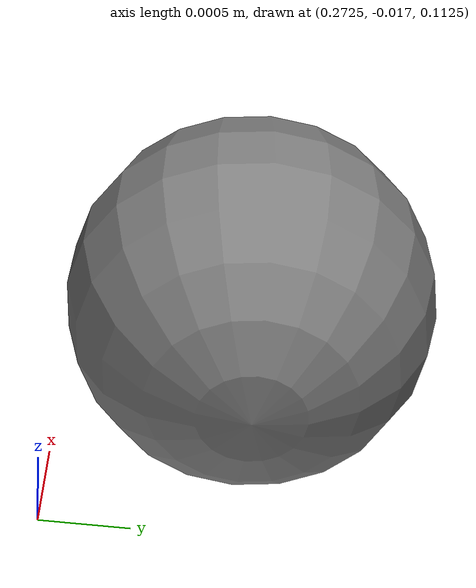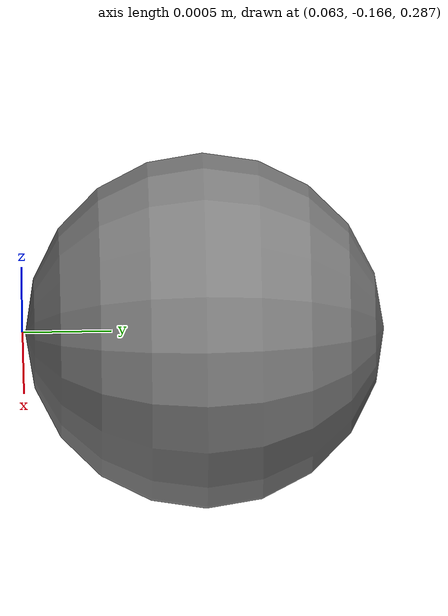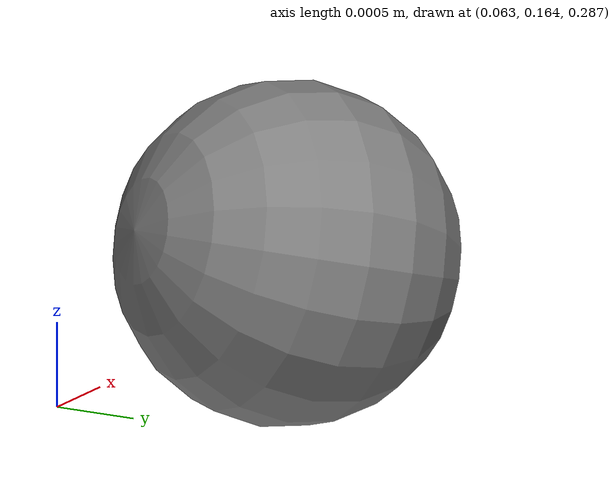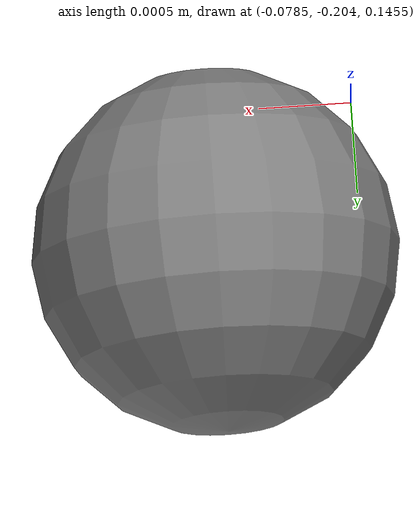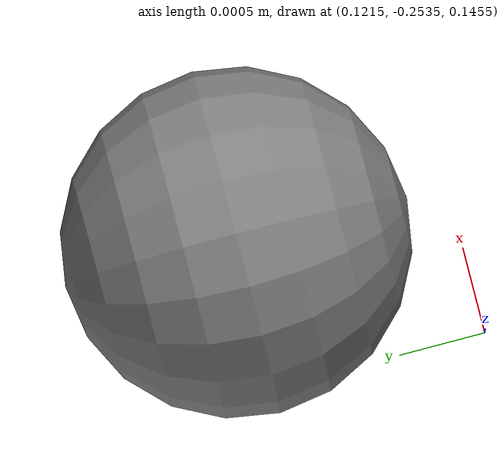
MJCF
<?xml version="1.0"?>
<mujoco model="hoppertrex_collision_repro">
  <compiler angle="radian" autolimits="true"/>

  <default>
    <default class="placeholder">
      <!-- Non-colliding placeholders preserve the original geom ordering. -->
      <geom type="sphere" size="0.001" contype="0" conaffinity="0" group="2"/>
    </default>
    <default class="collision">
      <geom contype="1" conaffinity="1" condim="3" group="3"
            friction="0.8 0.003 0.0001" solref="0.01 1"
            solimp="0.9 0.95 0.001"/>
    </default>
    <default class="wheel_collision">
      <geom contype="1" conaffinity="1" condim="6" group="3"
            friction="1.6 0.02 0.002" solref="0.005 1"
            solimp="0.95 0.99 0.001"/>
    </default>
  </default>

  <worldbody>
    <body name="chassis_base">
      <inertial pos="0.039288343435531 0.001694969587959 0.279014905476235"
                mass="5.8727148917171856368"
                diaginertia="0.0883099177066 0.14982418413 0.178825897519"/>
      <freejoint name="floating_base_joint"/>
      <geom name="chassis_base_visual_placeholder"
            pos="0.273490931289783 -0.015971992536545 0.113316109358136"
            class="placeholder"/>

      <body name="thigh_left" pos="0.063891170717588 0.165 0.287832113976058"
            quat="0 0 -0.707107 0.707107">
        <inertial pos="0.0927701 0.0928165 -0.00521573"
                  quat="0.664036 0.266895 -0.642286 0.274394"
                  mass="2.02414"
                  diaginertia="0.0168407 0.0162625 0.00141807"/>
        <joint name="thigh_left_01" pos="0 0 0" axis="0 0 1"
               actuatorfrcrange="-97 97" range="-0.663 0.698" limited="true"/>
        <geom name="thigh_left_visual_placeholder" class="placeholder"/>

        <body name="calf_left" pos="0.141407 0.141436 -0.038"
              quat="0.707107 0 0 0.707107">
          <inertial pos="0.000646118 0.162428 -0.019213"
                    quat="0.523795 0.476934 -0.463829 0.532011"
                    mass="1.40106"
                    diaginertia="0.00960709 0.00905314 0.00106096"/>
          <joint name="knee_left" pos="0 0 0" axis="0 0 1"
                 actuatorfrcrange="-97 97" range="-2.094 0.262" limited="true"/>
          <geom name="calf_left_visual_placeholder" class="placeholder"/>

          <body name="wheel_left" pos="0 0.2 -0.04925"
                quat="0.707107 0 0 -0.707107">
            <inertial pos="0.000105473 -0.0000752128 0.0138404"
                      quat="0.628379 0.323781 -0.628641 0.324216"
                      mass="2.02299"
                      diaginertia="0.01291 0.00667058 0.0066568"/>
            <joint name="wheel_left" pos="0 0 0" axis="0 0 1"
                   actuatorfrcrange="-5.8 5.8"/>
            <geom name="wheel_left_visual_placeholder" class="placeholder"/>
            <geom name="wheel_left_collision" type="cylinder"
                  pos="0.000105 -0.000075 0.01384" size="0.100 0.018"
                  class="wheel_collision"/>
          </body>
          <geom name="calf_left_collision" type="capsule"
                fromto="0 0 0 0 0.18 0" size="0.026" class="collision"/>
        </body>
        <geom name="thigh_left_collision" type="capsule"
              fromto="0 0 0 0.16 0.16 0" size="0.028" class="collision"/>
      </body>

      <body name="thigh_right" pos="0.063891480371615 -0.1650000000000002 0.287834102109747"
            quat="0 0 0.707107 0.707107">
        <inertial pos="0.0928881 -0.0926983 -0.00521573"
                  quat="0.266486 0.66421 -0.273971 0.642456"
                  mass="2.02414"
                  diaginertia="0.0168407 0.0162625 0.00141807"/>
        <joint name="thigh_right_01" pos="0 0 0" axis="0 0 1"
               actuatorfrcrange="-97 97" range="-0.698 0.663" limited="true"/>
        <geom name="thigh_right_visual_placeholder" class="placeholder"/>

        <body name="calf_right" pos="0.141586 -0.141256 -0.038"
              quat="0.707107 0 0 -0.707107">
          <inertial pos="0.000645393 -0.162426 -0.019213"
                    quat="0.476935 0.523803 -0.532007 0.463823"
                    mass="1.40106"
                    diaginertia="0.00960687 0.00905285 0.00106101"/>
          <joint name="knee_right" pos="0 0 0" axis="0 0 1"
                 actuatorfrcrange="-97 97" range="-0.262 2.094" limited="true"/>
          <geom name="calf_right_visual_placeholder" class="placeholder"/>

          <body name="wheel_right" pos="0 -0.2 -0.04925"
                quat="0.707107 0 0 0.707107">
            <inertial pos="0.000105473 -0.0000752128 0.0138404"
                      quat="0.628379 0.323781 -0.628641 0.324216"
                      mass="2.02299"
                      diaginertia="0.01291 0.00667058 0.0066568"/>
            <joint name="wheel_right" pos="0 0 0" axis="0 0 1"
                   actuatorfrcrange="-5.8 5.8"/>
            <geom name="wheel_right_visual_placeholder" class="placeholder"/>
            <geom name="wheel_right_collision" type="cylinder"
                  pos="0.000105 -0.000075 0.01384" size="0.100 0.018"
                  class="wheel_collision"/>
          </body>
          <geom name="calf_right_collision" type="capsule"
                fromto="0 0 0 0 -0.18 0" size="0.026" class="collision"/>
        </body>
        <geom name="thigh_right_collision" type="capsule"
              fromto="0 0 0 0.16 -0.16 0" size="0.028" class="collision"/>
      </body>

      <geom name="chassis_base_collision" type="box"
            pos="0.038392931289783 0.001124007463455 0.278828309358136"
            size="0.18 0.16 0.08" class="collision"/>
    </body>
  </worldbody>
</mujoco>
